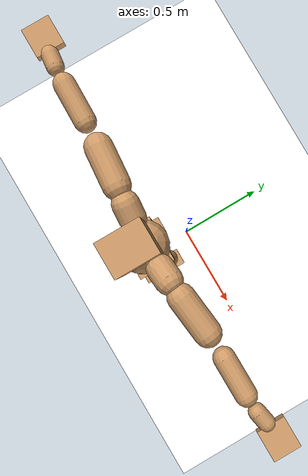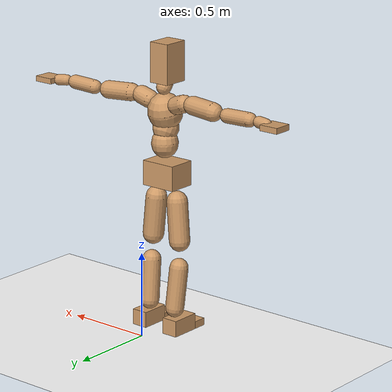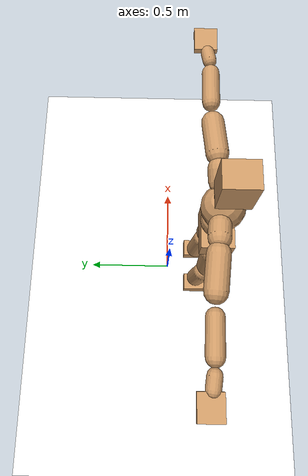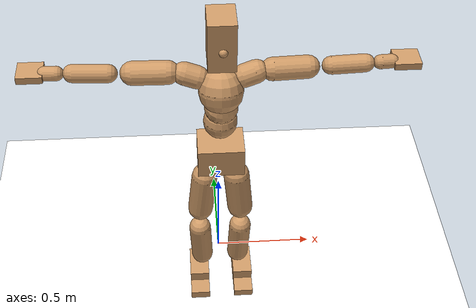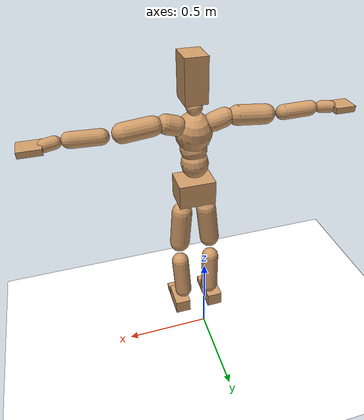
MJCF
<mujoco model="humanoid">
  <option integrator="implicitfast" />

  <visual>
    <global offwidth="1280" offheight="960" />
    <headlight active="1" ambient="0.34 0.34 0.34" diffuse="0.5 0.5 0.5" />
  </visual>

  <default>
    <joint damping="2" stiffness="2" armature="0.01" limited="true" solimplimit="0 .99 .01" />
    <geom condim="1" friction="0.7 0.005 0.0001" solimp=".99 .99 .003" solref="0.015 1" margin="0.001" rgba="0.8 0.6 .4 1" />
    <default class="smplcontact">
      <geom condim="3" friction="1. 0.005 0.0001" solref="0.015 1" solimp="0.98 0.98 0.001" priority="1" />
    </default>
    <default class="stiff_medium">
      <joint stiffness="10" />
    </default>
    <default class="stiff_medium_higher">
      <joint stiffness="50" />
    </default>
    <default class="stiff_high">
      <joint stiffness="100" />
    </default>
  </default>

  <asset>
    <texture type="skybox" builtin="gradient" rgb1="0.99 0.99 0.99" rgb2="0.608 0.828 0.892" width="100" />
    <texture builtin="flat" height="1278" mark="cross" markrgb="1 1 1" name="texgeom" random="0.01" rgb1="0.8 0.6 0.4" rgb2="0.8 0.6 0.4" type="cube" width="127" />
    <texture name="texplane" type="2d" builtin="checker" markrgb="1 1 1" rgb1="0.756 0.772 0.76" rgb2="0.6 0.6 0.6" width="100" height="100" />
    <material name="MatPlane" reflectance="0.5" texture="texplane" texrepeat="1 1" texuniform="true" />
    <material name="geom" texture="texgeom" texuniform="true" />
  </asset>

  <worldbody>
    <light name="tracking_light" pos="0 0 7" dir="0 0 -1" directional="true" cutoff="100" exponent="1" diffuse="1 1 1" specular="0.1 0.1 0.1" mode="trackcom" />
    <camera name="back" pos="0 3 2.4" xyaxes="-1 0 0 0 -1 2" mode="trackcom" />
    <camera name="side" pos="-3 0 2.4" xyaxes="0 -1 0 1 0 2" mode="trackcom" />
    <camera name="front_side" pos="-2.8 -2.8 0.8" xyaxes="0.5 -0.5 0 0.1 0.1 1" mode="trackcom" />
    <geom condim="3" name="floor" pos="0 0 0" rgba="1 1 1 1" size="100 100 .2" type="plane" material="MatPlane" />
    <body name="Pelvis" pos="-0.0018 -0.2233 0.9367" euler="90 0 0">
      <site name="Pelvis" size="0.01" />
      <freejoint name="Pelvis" />
      <geom type="box" pos="-0.0000 -0.0121 -0.0055" size="0.1069 0.0722 0.083" quat="1.0000 0.0000 0.0000 0.0000" density="3165.830099" name="Pelvis" />
      <body name="L_Hip" pos="0.0695 -0.0914 -0.0068">
        <joint name="L_Hip_x" type="hinge" pos="0 0 0" axis="1 0 0" stiffness="10.0" range="-160.0 22.92" class="stiff_medium" damping="15.0" armature="0.01"/>
        <joint name="L_Hip_y" type="hinge" pos="0 0 0" axis="0 1 0" stiffness="10.0" range="-70.0 70.0" class="stiff_medium" damping="10.000000000000004" armature="0.01000000000000001"/>
        <joint name="L_Hip_z" type="hinge" pos="0 0 0" axis="0 0 1" stiffness="10.0" range="-28.65 90.0" class="stiff_medium" damping="9.999999999999998" armature="0.009999999999999997"/>
        <geom type="capsule" density="2040.816327" fromto="0.0069 -0.075 -0.0009 0.0274 -0.3002 -0.0036" size="0.0615" name="L_Hip" />
        <body name="L_Knee" pos="0.0343 -0.3752 -0.0045">
          <joint name="L_Knee_x" type="hinge" pos="0 0 0" axis="1 0 0" range="-5.16 171.89" damping="7.999999999999999" armature="0.009999999999999998" stiffness="2.0"/>
          <joint name="L_Knee_y" type="hinge" pos="0 0 0" axis="0 1 0" range="-4.58 6.88" damping="8.000000000000004" armature="0.010000000000000009" stiffness="2.0"/>
          <joint name="L_Knee_z" type="hinge" pos="0 0 0" axis="0 0 1" range="-6.88 4.58" damping="7.999999999999996" armature="0.00999999999999999" stiffness="2.0"/>
          <geom type="capsule" density="1234.567901" fromto="-0.0027 -0.0796 -0.0087 -0.0109 -0.3184 -0.035" size="0.0541" name="L_Knee" />
          <body name="L_Ankle" pos="-0.0136 -0.398 -0.0437">
            <joint name="L_Ankle_x" type="hinge" pos="0 0 0" axis="1 0 0" range="-45.84 45.84" class="stiff_medium" damping="5.999999999999997" armature="0.009999999999999992" stiffness="10.0"/>
            <joint name="L_Ankle_y" type="hinge" pos="0 0 0" axis="0 1 0" range="-74.48 22.92" class="stiff_medium" damping="3.0" armature="0.010000000000000002" stiffness="10.0"/>
            <joint name="L_Ankle_z" type="hinge" pos="0 0 0" axis="0 0 1" range="-4.58 4.58" class="stiff_medium" damping="5.999999999999862" armature="0.00999999999999954" stiffness="10.0"/>
            <geom type="box" pos="0.0233 -0.0239 0.0242" size="0.0483 0.0464 0.085" quat="1.0000 0.0000 0.0000 0.0000" density="449.071558" name="L_Ankle" class="smplcontact" />
            <body name="L_Toe" pos="0.0264 -0.0558 0.1193">
              <joint name="L_Toe_x" type="hinge" pos="0 0 0" axis="1 0 0" range="-91.67 22.92" armature="0.009999999999999044" damping="1.9999999999999043" stiffness="2.0"/>
              <joint name="L_Toe_y" type="hinge" pos="0 0 0" axis="0 1 0" range="-4.58 4.58" armature="0.009999999999999976" damping="1.9999999999999976" stiffness="2.0"/>
              <joint name="L_Toe_z" type="hinge" pos="0 0 0" axis="0 0 1" range="-4.58 4.58" armature="0.009999999999998812" damping="1.9999999999998812" stiffness="2.0"/>
              <geom type="box" pos="-0.003 0.0055 0.0248" size="0.0478 0.02 0.0496" quat="1.0000 0.0000 0.0000 0.0000" density="423.206892" name="L_Toe" class="smplcontact" />
            </body>
          </body>
        </body>
      </body>
      <body name="R_Hip" pos="-0.0677 -0.0905 -0.0043">
        <joint name="R_Hip_x" type="hinge" pos="0 0 0" axis="1 0 0" stiffness="10.0" range="-160.0 22.92" class="stiff_medium" damping="15.0" armature="0.01"/>
        <joint name="R_Hip_y" type="hinge" pos="0 0 0" axis="0 1 0" stiffness="10.0" range="-70.0 70.0" class="stiff_medium" damping="10.000000000000004" armature="0.01000000000000001"/>
        <joint name="R_Hip_z" type="hinge" pos="0 0 0" axis="0 0 1" stiffness="10.0" range="-90.0 28.65" class="stiff_medium" damping="9.999999999999998" armature="0.009999999999999997"/>
        <geom type="capsule" density="2040.816327" fromto="-0.0077 -0.0765 -0.0018 -0.0306 -0.3061 -0.0071" size="0.0606" name="R_Hip" />
        <body name="R_Knee" pos="-0.0383 -0.3826 -0.0089">
          <joint name="R_Knee_x" type="hinge" pos="0 0 0" axis="1 0 0" range="-5.16 171.89" damping="7.999999999999999" armature="0.009999999999999998" stiffness="2.0"/>
          <joint name="R_Knee_y" type="hinge" pos="0 0 0" axis="0 1 0" range="-6.88 4.58" damping="8.000000000000004" armature="0.010000000000000009" stiffness="2.0"/>
          <joint name="R_Knee_z" type="hinge" pos="0 0 0" axis="0 0 1" range="-4.58 6.88" damping="7.999999999999996" armature="0.00999999999999999" stiffness="2.0"/>
          <geom type="capsule" density="1234.567901" fromto="0.0032 -0.0797 -0.0085 0.0126 -0.3187 -0.0338" size="0.0541" name="R_Knee" />
          <body name="R_Ankle" pos="0.0158 -0.3984 -0.0423">
            <joint name="R_Ankle_x" type="hinge" pos="0 0 0" axis="1 0 0" range="-45.84 45.84" class="stiff_medium" damping="5.999999999999997" armature="0.009999999999999992" stiffness="10.0"/>
            <joint name="R_Ankle_y" type="hinge" pos="0 0 0" axis="0 1 0" range="-22.92 74.48" class="stiff_medium" damping="3.0" armature="0.010000000000000002" stiffness="10.0"/>
            <joint name="R_Ankle_z" type="hinge" pos="0 0 0" axis="0 0 1" range="-4.58 4.58" class="stiff_medium" damping="5.999999999999862" armature="0.00999999999999954" stiffness="10.0"/>
            <geom type="box" pos="-0.0212 -0.0174 0.0256" size="0.0483 0.0478 0.0865" quat="1.0000 0.0000 0.0000 0.0000" density="434.700981" name="R_Ankle" class="smplcontact" />
            <body name="R_Toe" pos="-0.0254 -0.0481 0.1233">
              <joint name="R_Toe_x" type="hinge" pos="0 0 0" axis="1 0 0" range="-91.67 22.92" armature="0.009999999999999044" damping="1.9999999999999043" stiffness="2.0"/>
              <joint name="R_Toe_y" type="hinge" pos="0 0 0" axis="0 1 0" range="-4.58 4.58" armature="0.009999999999999976" damping="1.9999999999999976" stiffness="2.0"/>
              <joint name="R_Toe_z" type="hinge" pos="0 0 0" axis="0 0 1" range="-4.58 4.58" armature="0.009999999999998812" damping="1.9999999999998812" stiffness="2.0"/>
              <geom type="box" pos="0.0042 0.0045 0.0227" size="0.0479 0.0216 0.0493" quat="1.0000 0.0000 0.0000 0.0000" density="407.384095" name="R_Toe" class="smplcontact" />
            </body>
          </body>
        </body>
      </body>
      <body name="Torso" pos="-0.00234375 0.102188 -0.0250313">
        <joint name="Torso_x" type="hinge" pos="0 0 0" axis="1 0 0" range="-25.78 57.3" class="stiff_medium" damping="13.924386332745925" armature="0.009091029877276741" stiffness="9.47886909090909"/>
        <joint name="Torso_y" type="hinge" pos="0 0 0" axis="0 1 0" range="-57.3 57.3" class="stiff_high" damping="19.449735711162393" armature="0.010002952201007782" stiffness="94.54514318181818"/>
        <joint name="Torso_z" type="hinge" pos="0 0 0" axis="0 0 1" range="-34.38 34.38" class="stiff_high" damping="18.747492789601274" armature="0.009381472789269783" stiffness="93.66026363636362"/>
        <geom type="capsule" density="2040.816327" fromto="0.00234375 0.057 0.00046875 0.0028125 0.0696563 0.0005625" size="0.0769" name="Torso" />
        <body name="Spine" pos="0.00515625 0.12675 0.00103125">
          <joint name="Spine_x" type="hinge" pos="0 0 0" axis="1 0 0" stiffness="9.535765227272726" range="-25.78 57.3" class="stiff_medium" damping="14.13021168904114" armature="0.009305919002753496"/>
          <joint name="Spine_y" type="hinge" pos="0 0 0" axis="0 1 0" stiffness="9.513657954545454" range="-57.3 57.3" class="stiff_high" damping="7.8046485362336595" armature="0.010004126939324256"/>
          <joint name="Spine_z" type="hinge" pos="0 0 0" axis="0 0 1" stiffness="19.15594" range="-34.38 34.38" class="stiff_high" damping="11.54728026774008" armature="0.009667706319651257"/>
          <geom type="capsule" density="2040.816327" fromto="0.00065625 0.0223125 0.0106875 0.00075 0.0272812 0.013125" size="0.0755" name="Spine" />
          <body name="Chest" pos="0.00140625 0.0495938 0.0238125">
            <joint name="Chest_x" type="hinge" pos="0 0 0" axis="1 0 0" stiffness="9.658879545454546" range="-25.78 57.3" class="stiff_medium" damping="14.318084840789863" armature="0.009433233720020997"/>
            <joint name="Chest_y" type="hinge" pos="0 0 0" axis="0 1 0" stiffness="9.805882272727274" range="-57.3 57.3" class="stiff_high" damping="7.919914177464732" armature="0.009994804463066654"/>
            <joint name="Chest_z" type="hinge" pos="0 0 0" axis="0 0 1" stiffness="19.272825909090905" range="-34.38 34.38" class="stiff_high" damping="11.65221020940039" armature="0.009784502009641193"/>
            <geom type="capsule" density="2040.816327" fromto="-0.00084375 0.0639375 -0.0162188 -0.0009375 0.0780938 -0.019875" size="0.1002" name="Chest" />
            <body name="Neck" pos="-0.002625 0.200531 -0.0402187">
              <joint name="Neck_x" type="hinge" pos="0 0 0" axis="1 0 0" range="-28.65 57.3" class="stiff_medium_higher" damping="9.957065922091603" armature="0.009983589354521967" stiffness="49.65306477272727"/>
              <joint name="Neck_y" type="hinge" pos="0 0 0" axis="0 1 0" range="-40.11 40.11" class="stiff_medium_higher" damping="9.950150884054224" armature="0.009954493662702691" stiffness="49.72905000000001"/>
              <joint name="Neck_z" type="hinge" pos="0 0 0" axis="0 0 1" range="-40.11 40.11" class="stiff_medium_higher" damping="9.980845666402184" armature="0.009988471928231038" stiffness="49.86612613636364"/>
              <geom type="capsule" density="1000" fromto="0.0009375 0.0121875 0.00965625 0.00384375 0.04875 0.0385312" size="0.0436" name="Neck" />
              <body name="Head" pos="0.0052 0.065 0.0513">
                <joint name="Head_x" type="hinge" pos="0 0 0" axis="1 0 0" range="-28.65 57.3" class="stiff_medium_higher" damping="1.9999999999999987" armature="0.009999999999999986" stiffness="50.0"/>
                <joint name="Head_y" type="hinge" pos="0 0 0" axis="0 1 0" range="-40.11 40.11" class="stiff_medium_higher" damping="2.0" armature="0.010000000000000002" stiffness="50.0"/>
                <joint name="Head_z" type="hinge" pos="0 0 0" axis="0 0 1" range="-40.11 40.11" class="stiff_medium_higher" damping="1.9999999999999942" armature="0.009999999999999943" stiffness="50.0"/>
                <geom type="box" pos="-0.0042 0.0876 -0.0116" size="0.0606 0.1154 0.076" quat="1.0000 0.0000 0.0000 0.0000" density="1018.069894" name="Head" />
                <geom type="capsule" name="nose" size="0.02 0.01" pos="0 0.07 0.05" quat="1 0 0 0" mass="0" contype="0" conaffinity="0" />
              </body>
            </body>
            <body name="L_Thorax" pos="0.0788 0.1217 -0.0341">
              <joint name="L_Thorax_x" type="hinge" pos="0 0 0" axis="1 0 0" range="-10.89 4.58" class="stiff_medium_higher" damping="19.999999999999833" armature="0.009999999999999835" stiffness="50.0"/>
              <joint name="L_Thorax_y" type="hinge" pos="0 0 0" axis="0 1 0" range="-28.65 17.19" class="stiff_medium_higher" damping="20.0" armature="0.010000000000000002" stiffness="50.0"/>
              <joint name="L_Thorax_z" type="hinge" pos="0 0 0" axis="0 0 1" range="-31.51 40.11" class="stiff_medium_higher" damping="19.999999999999996" armature="0.009999999999999995" stiffness="50.0"/>
              <geom type="capsule" density="1000" fromto="0.0182 0.0061 -0.0018 0.0728 0.0244 -0.0071" size="0.0521" name="L_Thorax" />
              <body name="L_Shoulder" pos="0.091 0.0305 -0.0089">
                <joint name="L_Shoulder_x" type="hinge" pos="0 0 0" axis="1 0 0" range="-97.4 97.4" class="stiff_medium" damping="5.9999999999999964" armature="0.009999999999999986" stiffness="10.0"/>
                <joint name="L_Shoulder_y" type="hinge" pos="0 0 0" axis="0 1 0" range="-108.86 80.21" class="stiff_medium" damping="6.0" armature="0.010000000000000002" stiffness="10.0"/>
                <joint name="L_Shoulder_z" type="hinge" pos="0 0 0" axis="0 0 1" range="-97.4 85.94" class="stiff_medium" damping="6.0" armature="0.010000000000000002" stiffness="10.0"/>
                <geom type="capsule" density="1000" fromto="0.0519 -0.0026 -0.0055 0.2077 -0.0102 -0.022" size="0.0517" name="L_Shoulder" />
                <body name="L_Elbow" pos="0.2596 -0.0128 -0.0275">
                  <joint name="L_Elbow_x" type="hinge" pos="0 0 0" axis="1 0 0" range="-17.19 4.58" damping="4.99999999999995" armature="0.0099999999999998" stiffness="2.0"/>
                  <joint name="L_Elbow_y" type="hinge" pos="0 0 0" axis="0 1 0" range="-180.0 17.19" damping="5.000000000000005" armature="0.010000000000000023" stiffness="2.0"/>
                  <joint name="L_Elbow_z" type="hinge" pos="0 0 0" axis="0 0 1" range="-100.84 4.58" damping="4.999999999999999" armature="0.009999999999999998" stiffness="2.0"/>
                  <geom type="capsule" density="1000" fromto="0.0498 0.0018 -0.0002 0.1994 0.0072 -0.0009" size="0.0405" name="L_Elbow" />
                  <body name="L_Wrist" pos="0.2492 0.009 -0.0012">
                    <joint name="L_Wrist_x" type="hinge" pos="0 0 0" axis="1 0 0" range="-180.0 22.92" armature="0.00999999999999983" damping="1.999999999999983" stiffness="2.0"/>
                    <joint name="L_Wrist_y" type="hinge" pos="0 0 0" axis="0 1 0" range="-17.19 17.19" armature="0.010000000000000026" damping="2.0000000000000027" stiffness="2.0"/>
                    <joint name="L_Wrist_z" type="hinge" pos="0 0 0" axis="0 0 1" range="-22.92 22.92" armature="0.009999999999999943" damping="1.9999999999999942" stiffness="2.0"/>
                    <geom type="capsule" density="1000" fromto="0.0168 -0.0016 -0.003 0.0672 -0.0065 -0.012" size="0.0318" name="L_Wrist" class="smplcontact" />
                    <body name="L_Hand" pos="0.084 -0.0082 -0.0149">
                      <joint name="L_Hand_x" type="hinge" pos="0 0 0" axis="1 0 0" range="-17.19 17.19" armature="0.009999999999999924" damping="1.9999999999999925" stiffness="2.0"/>
                      <joint name="L_Hand_y" type="hinge" pos="0 0 0" axis="0 1 0" range="-51.57 51.57" armature="0.01000000000000008" damping="2.000000000000008" stiffness="2.0"/>
                      <joint name="L_Hand_z" type="hinge" pos="0 0 0" axis="0 0 1" range="-91.67 91.67" armature="0.010000000000000174" damping="2.0000000000000173" stiffness="2.0"/>
                      <geom type="box" pos="0.0493 0.001 -0.0058" size="0.0585 0.0158 0.0538" quat="1.0000 0.0000 0.0000 0.0000" density="400.552564" name="L_Hand" class="smplcontact" />
                    </body>
                  </body>
                </body>
              </body>
            </body>
            <body name="R_Thorax" pos="-0.0818 0.1188 -0.0386">
              <joint name="R_Thorax_x" type="hinge" pos="0 0 0" axis="1 0 0" range="-10.89 4.58" class="stiff_medium_higher" damping="19.999999999999833" armature="0.009999999999999835" stiffness="50.0"/>
              <joint name="R_Thorax_y" type="hinge" pos="0 0 0" axis="0 1 0" range="-17.19 28.65" class="stiff_medium_higher" damping="20.0" armature="0.010000000000000002" stiffness="50.0"/>
              <joint name="R_Thorax_z" type="hinge" pos="0 0 0" axis="0 0 1" range="-40.11 31.51" class="stiff_medium_higher" damping="19.999999999999996" armature="0.009999999999999995" stiffness="50.0"/>
              <geom type="capsule" density="1000" fromto="-0.0192 0.0065 -0.0018 -0.0768 0.026 -0.0073" size="0.0511" name="R_Thorax" />
              <body name="R_Shoulder" pos="-0.096 0.0326 -0.0091">
                <joint name="R_Shoulder_x" type="hinge" pos="0 0 0" axis="1 0 0" range="-97.4 97.4" class="stiff_medium" damping="5.9999999999999964" armature="0.009999999999999986" stiffness="10.0"/>
                <joint name="R_Shoulder_y" type="hinge" pos="0 0 0" axis="0 1 0" range="-80.21 108.86" class="stiff_medium" damping="6.0" armature="0.010000000000000002" stiffness="10.0"/>
                <joint name="R_Shoulder_z" type="hinge" pos="0 0 0" axis="0 0 1" range="-85.94 97.4" class="stiff_medium" damping="6.0" armature="0.010000000000000002" stiffness="10.0"/>
                <geom type="capsule" density="1000" fromto="-0.0507 -0.0027 -0.0043 -0.203 -0.0107 -0.0171" size="0.0531" name="R_Shoulder" />
                <body name="R_Elbow" pos="-0.2537 -0.0133 -0.0214">
                  <joint name="R_Elbow_x" type="hinge" pos="0 0 0" axis="1 0 0" range="-17.19 4.58" damping="4.99999999999995" armature="0.0099999999999998" stiffness="2.0"/>
                  <joint name="R_Elbow_y" type="hinge" pos="0 0 0" axis="0 1 0" range="-17.19 180.0" damping="5.000000000000005" armature="0.010000000000000023" stiffness="2.0"/>
                  <joint name="R_Elbow_z" type="hinge" pos="0 0 0" axis="0 0 1" range="-4.58 100.84" damping="4.999999999999999" armature="0.009999999999999998" stiffness="2.0"/>
                  <geom type="capsule" density="1000" fromto="-0.0511 0.0016 -0.0011 -0.2042 0.0062 -0.0044" size="0.0408" name="R_Elbow" />
                  <body name="R_Wrist" pos="-0.2553 0.0078 -0.0056">
                    <joint name="R_Wrist_x" type="hinge" pos="0 0 0" axis="1 0 0" range="-180.0 22.92" armature="0.00999999999999983" damping="1.999999999999983" stiffness="2.0"/>
                    <joint name="R_Wrist_y" type="hinge" pos="0 0 0" axis="0 1 0" range="-17.19 17.19" armature="0.010000000000000026" damping="2.0000000000000027" stiffness="2.0"/>
                    <joint name="R_Wrist_z" type="hinge" pos="0 0 0" axis="0 0 1" range="-22.92 22.92" armature="0.009999999999999943" damping="1.9999999999999942" stiffness="2.0"/>
                    <geom type="capsule" density="1000" fromto="-0.0169 -0.0012 -0.0021 -0.0677 -0.0049 -0.0083" size="0.0326" name="R_Wrist" class="smplcontact" />
                    <body name="R_Hand" pos="-0.0846 -0.0061 -0.0103">
                      <joint name="R_Hand_x" type="hinge" pos="0 0 0" axis="1 0 0" range="-17.19 17.19" armature="0.009999999999999924" damping="1.9999999999999925" stiffness="2.0"/>
                      <joint name="R_Hand_y" type="hinge" pos="0 0 0" axis="0 1 0" range="-51.57 51.57" armature="0.01000000000000008" damping="2.000000000000008" stiffness="2.0"/>
                      <joint name="R_Hand_z" type="hinge" pos="0 0 0" axis="0 0 1" range="-91.67 91.67" armature="0.010000000000000174" damping="2.0000000000000173" stiffness="2.0"/>
                      <geom type="box" pos="-0.0462 -0.0009 -0.0079" size="0.0569 0.0164 0.0546" quat="1.0000 0.0000 0.0000 0.0000" density="403.679611" name="R_Hand" class="smplcontact" />
                    </body>
                  </body>
                </body>
              </body>
            </body>
          </body>
        </body>
      </body>
    </body>
  </worldbody>
  <actuator>
    <general name="L_Hip_x" joint="L_Hip_x" biastype="affine" gainprm="287.33006409732246" biasprm="-215.3247604770444 -180.0 -2.0" ctrllimited="true" ctrlrange="-1 1" forcerange="-360.0 360.0" />
    <general name="L_Hip_y" joint="L_Hip_y" biastype="affine" gainprm="219.9114857512855" biasprm="0.0 -180.0 -2.000000000000001" ctrllimited="true" ctrlrange="-1 1" forcerange="-360.0 360.0" />
    <general name="L_Hip_z" joint="L_Hip_z" biastype="affine" gainprm="186.3749841742145" biasprm="96.3683546488669 -180.0 -1.9999999999999996" ctrllimited="true" ctrlrange="-1 1" forcerange="-360.0 360.0" />
    <general name="L_Knee_x" joint="L_Knee_x" biastype="affine" gainprm="278.10948965903646" biasprm="261.8988715665131 -180.0 -1.9999999999999998" ctrllimited="true" ctrlrange="-1 1" forcerange="-360.0 360.0" />
    <general name="L_Knee_y" joint="L_Knee_y" biastype="affine" gainprm="18.001325905069514" biasprm="3.612831551628262 -180.0 -2.000000000000001" ctrllimited="true" ctrlrange="-1 1" forcerange="-360.0 360.0" />
    <general name="L_Knee_z" joint="L_Knee_z" biastype="affine" gainprm="18.001325905069514" biasprm="-3.612831551628262 -180.0 -1.999999999999999" ctrllimited="true" ctrlrange="-1 1" forcerange="-360.0 360.0" />
    <general name="L_Ankle_x" joint="L_Ankle_x" biastype="affine" gainprm="72.00530362027807" biasprm="0.0 -90.0 -1.9999999999999991" ctrllimited="true" ctrlrange="-1 1" forcerange="-180.0 180.0" />
    <general name="L_Ankle_y" joint="L_Ankle_y" biastype="affine" gainprm="76.49778111491148" biasprm="-40.49512930477244 -90.0 -2.0" ctrllimited="true" ctrlrange="-1 1" forcerange="-180.0 180.0" />
    <general name="L_Ankle_z" joint="L_Ankle_z" biastype="affine" gainprm="7.1942471767206255" biasprm="0.0 -90.0 -1.999999999999954" ctrllimited="true" ctrlrange="-1 1" forcerange="-180.0 180.0" />
    <general name="L_Toe_x" joint="L_Toe_x" biastype="affine" gainprm="71.99902043497087" biasprm="-43.19689898685965 -72.0 -0.7999999999999617" ctrllimited="true" ctrlrange="-1 1" forcerange="-144.0 144.0" />
    <general name="L_Toe_y" joint="L_Toe_y" biastype="affine" gainprm="5.755397741376501" biasprm="0.0 -72.0 -0.799999999999999" ctrllimited="true" ctrlrange="-1 1" forcerange="-144.0 144.0" />
    <general name="L_Toe_z" joint="L_Toe_z" biastype="affine" gainprm="5.755397741376501" biasprm="0.0 -72.0 -0.7999999999999525" ctrllimited="true" ctrlrange="-1 1" forcerange="-144.0 144.0" />
    <general name="R_Hip_x" joint="R_Hip_x" biastype="affine" gainprm="287.33006409732246" biasprm="-215.3247604770444 -180.0 -2.0" ctrllimited="true" ctrlrange="-1 1" forcerange="-360.0 360.0" />
    <general name="R_Hip_y" joint="R_Hip_y" biastype="affine" gainprm="219.9114857512855" biasprm="0.0 -180.0 -2.000000000000001" ctrllimited="true" ctrlrange="-1 1" forcerange="-360.0 360.0" />
    <general name="R_Hip_z" joint="R_Hip_z" biastype="affine" gainprm="186.3749841742145" biasprm="-96.3683546488669 -180.0 -1.9999999999999996" ctrllimited="true" ctrlrange="-1 1" forcerange="-360.0 360.0" />
    <general name="R_Knee_x" joint="R_Knee_x" biastype="affine" gainprm="278.10948965903646" biasprm="261.8988715665131 -180.0 -1.9999999999999998" ctrllimited="true" ctrlrange="-1 1" forcerange="-360.0 360.0" />
    <general name="R_Knee_y" joint="R_Knee_y" biastype="affine" gainprm="18.001325905069514" biasprm="-3.612831551628262 -180.0 -2.000000000000001" ctrllimited="true" ctrlrange="-1 1" forcerange="-360.0 360.0" />
    <general name="R_Knee_z" joint="R_Knee_z" biastype="affine" gainprm="18.001325905069514" biasprm="3.612831551628262 -180.0 -1.999999999999999" ctrllimited="true" ctrlrange="-1 1" forcerange="-360.0 360.0" />
    <general name="R_Ankle_x" joint="R_Ankle_x" biastype="affine" gainprm="72.00530362027807" biasprm="0.0 -90.0 -1.9999999999999991" ctrllimited="true" ctrlrange="-1 1" forcerange="-180.0 180.0" />
    <general name="R_Ankle_y" joint="R_Ankle_y" biastype="affine" gainprm="76.49778111491148" biasprm="40.49512930477244 -90.0 -2.0" ctrllimited="true" ctrlrange="-1 1" forcerange="-180.0 180.0" />
    <general name="R_Ankle_z" joint="R_Ankle_z" biastype="affine" gainprm="7.1942471767206255" biasprm="0.0 -90.0 -1.999999999999954" ctrllimited="true" ctrlrange="-1 1" forcerange="-180.0 180.0" />
    <general name="R_Toe_x" joint="R_Toe_x" biastype="affine" gainprm="71.99902043497087" biasprm="-43.19689898685965 -72.0 -0.7999999999999617" ctrllimited="true" ctrlrange="-1 1" forcerange="-144.0 144.0" />
    <general name="R_Toe_y" joint="R_Toe_y" biastype="affine" gainprm="5.755397741376501" biasprm="0.0 -72.0 -0.799999999999999" ctrllimited="true" ctrlrange="-1 1" forcerange="-144.0 144.0" />
    <general name="R_Toe_z" joint="R_Toe_z" biastype="affine" gainprm="5.755397741376501" biasprm="0.0 -72.0 -0.7999999999999525" ctrllimited="true" ctrlrange="-1 1" forcerange="-144.0 144.0" />
    <general name="Torso_x" joint="Torso_x" biastype="affine" gainprm="164.9345450778796" biasprm="62.57507054471309 -227.49285818181815 -3.7131696887322465" ctrllimited="true" ctrlrange="-1 1" forcerange="-341.23928727272727 341.23928727272727" />
    <general name="Torso_y" joint="Torso_y" biastype="affine" gainprm="226.92505802098268" biasprm="0.0 -226.90834363636364 -3.8899471422324785" ctrllimited="true" ctrlrange="-1 1" forcerange="-340.3625154545455 340.3625154545455" />
    <general name="Torso_z" joint="Torso_z" biastype="affine" gainprm="134.88071440583306" biasprm="0.0 -224.7846327272727 -3.749498557920255" ctrllimited="true" ctrlrange="-1 1" forcerange="-337.17694909090903 337.17694909090903" />
    <general name="Spine_x" joint="Spine_x" biastype="affine" gainprm="165.92455119335867" biasprm="62.95067228712883 -228.85836545454544 -3.768056450410971" ctrllimited="true" ctrlrange="-1 1" forcerange="-343.2875481818182 343.2875481818182" />
    <general name="Spine_y" joint="Spine_y" biastype="affine" gainprm="228.344609852173" biasprm="0.0 -228.3277909090909 -3.9023242681168298" ctrllimited="true" ctrlrange="-1 1" forcerange="-342.49168636363635 342.49168636363635" />
    <general name="Spine_z" joint="Spine_z" biastype="affine" gainprm="137.93292758318296" biasprm="0.0 -229.87128 -3.8490934225800264" ctrllimited="true" ctrlrange="-1 1" forcerange="-344.80692 344.80692" />
    <general name="Chest_x" joint="Chest_x" biastype="affine" gainprm="168.06676920134512" biasprm="63.763415566037516 -231.8131090909091 -3.8181559575439636" ctrllimited="true" ctrlrange="-1 1" forcerange="-347.71966363636363 347.71966363636363" />
    <general name="Chest_y" joint="Chest_y" biastype="affine" gainprm="235.3585101041432" biasprm="0.0 -235.34117454545455 -3.959957088732366" ctrllimited="true" ctrlrange="-1 1" forcerange="-353.0117618181818 353.0117618181818" />
    <general name="Chest_z" joint="Chest_z" biastype="affine" gainprm="138.77456812048524" biasprm="0.0 -231.27391090909086 -3.88407006980013" ctrllimited="true" ctrlrange="-1 1" forcerange="-346.9108663636363 346.9108663636363" />
    <general name="Neck_x" joint="Neck_x" biastype="affine" gainprm="26.814630034781697" biasprm="8.938210011593899 -35.750206636363636 -0.7965652737673283" ctrllimited="true" ctrlrange="-1 1" forcerange="-71.50041327272727 71.50041327272727" />
    <general name="Neck_y" joint="Neck_y" biastype="affine" gainprm="25.065287407985924" biasprm="0.0 -35.804916000000006 -0.7960120707243381" ctrllimited="true" ctrlrange="-1 1" forcerange="-71.60983200000001 71.60983200000001" />
    <general name="Neck_z" joint="Neck_z" biastype="affine" gainprm="25.13437886971163" biasprm="0.0 -35.90361081818182 -0.7984676533121747" ctrllimited="true" ctrlrange="-1 1" forcerange="-71.80722163636364 71.80722163636364" />
    <general name="Head_x" joint="Head_x" biastype="affine" gainprm="18.001325905069514" biasprm="6.000441968356505 -24.0 -0.7999999999999995" ctrllimited="true" ctrlrange="-1 1" forcerange="-48.0 48.0" />
    <general name="Head_y" joint="Head_y" biastype="affine" gainprm="16.801237511398213" biasprm="0.0 -24.0 -0.8" ctrllimited="true" ctrlrange="-1 1" forcerange="-48.0 48.0" />
    <general name="Head_z" joint="Head_z" biastype="affine" gainprm="16.801237511398213" biasprm="0.0 -24.0 -0.7999999999999977" ctrllimited="true" ctrlrange="-1 1" forcerange="-48.0 48.0" />
    <general name="L_Thorax_x" joint="L_Thorax_x" biastype="affine" gainprm="16.200146117011364" biasprm="-6.6078165480505335 -120.0 -1.5999999999999868" ctrllimited="true" ctrlrange="-1 1" forcerange="-240.0 240.0" />
    <general name="L_Thorax_y" joint="L_Thorax_y" biastype="affine" gainprm="48.00353574685204" biasprm="-12.00088393671301 -120.0 -1.6" ctrllimited="true" ctrlrange="-1 1" forcerange="-240.0 240.0" />
    <general name="L_Thorax_z" joint="L_Thorax_z" biastype="affine" gainprm="75.00028861670033" biasprm="9.00589894029074 -120.0 -1.5999999999999996" ctrllimited="true" ctrlrange="-1 1" forcerange="-240.0 240.0" />
    <general name="L_Shoulder_x" joint="L_Shoulder_x" biastype="affine" gainprm="81.5976331892389" biasprm="0.0 -48.0 -1.599999999999999" ctrllimited="true" ctrlrange="-1 1" forcerange="-96.0 96.0" />
    <general name="L_Shoulder_y" joint="L_Shoulder_y" biastype="affine" gainprm="79.19745640189629" biasprm="-12.00088393671301 -48.0 -1.6" ctrllimited="true" ctrlrange="-1 1" forcerange="-96.0 96.0" />
    <general name="L_Shoulder_z" joint="L_Shoulder_z" biastype="affine" gainprm="76.79727961455369" biasprm="-4.800353574685214 -48.0 -1.6" ctrllimited="true" ctrlrange="-1 1" forcerange="-96.0 96.0" />
    <general name="L_Elbow_x" joint="L_Elbow_x" biastype="affine" gainprm="13.67849441372996" biasprm="-7.923096672353461 -72.0 -0.799999999999992" ctrllimited="true" ctrlrange="-1 1" forcerange="-144.0 144.0" />
    <general name="L_Elbow_y" joint="L_Elbow_y" biastype="affine" gainprm="123.89813107227425" biasprm="-102.29653998619085 -72.0 -0.8000000000000009" ctrllimited="true" ctrlrange="-1 1" forcerange="-144.0 144.0" />
    <general name="L_Elbow_z" joint="L_Elbow_z" biastype="affine" gainprm="66.23733950828719" biasprm="-60.4819417669107 -72.0 -0.7999999999999999" ctrllimited="true" ctrlrange="-1 1" forcerange="-144.0 144.0" />
    <general name="L_Wrist_x" joint="L_Wrist_x" biastype="affine" gainprm="21.24973270888136" biasprm="-16.449379134196157 -12.0 -0.7999999999999932" ctrllimited="true" ctrlrange="-1 1" forcerange="-24.0 24.0" />
    <general name="L_Wrist_y" joint="L_Wrist_y" biastype="affine" gainprm="3.6002651810139037" biasprm="0.0 -12.0 -0.8000000000000012" ctrllimited="true" ctrlrange="-1 1" forcerange="-24.0 24.0" />
    <general name="L_Wrist_z" joint="L_Wrist_z" biastype="affine" gainprm="4.800353574685205" biasprm="0.0 -12.0 -0.7999999999999977" ctrllimited="true" ctrlrange="-1 1" forcerange="-24.0 24.0" />
    <general name="L_Hand_x" joint="L_Hand_x" biastype="affine" gainprm="3.6002651810139037" biasprm="0.0 -12.0 -0.799999999999997" ctrllimited="true" ctrlrange="-1 1" forcerange="-24.0 24.0" />
    <general name="L_Hand_y" joint="L_Hand_y" biastype="affine" gainprm="10.800795543041708" biasprm="0.0 -12.0 -0.8000000000000033" ctrllimited="true" ctrlrange="-1 1" forcerange="-24.0 24.0" />
    <general name="L_Hand_z" joint="L_Hand_z" biastype="affine" gainprm="19.199319903638422" biasprm="0.0 -12.0 -0.8000000000000069" ctrllimited="true" ctrlrange="-1 1" forcerange="-24.0 24.0" />
    <general name="R_Thorax_x" joint="R_Thorax_x" biastype="affine" gainprm="16.200146117011364" biasprm="-6.6078165480505335 -120.0 -1.5999999999999868" ctrllimited="true" ctrlrange="-1 1" forcerange="-240.0 240.0" />
    <general name="R_Thorax_y" joint="R_Thorax_y" biastype="affine" gainprm="48.00353574685204" biasprm="12.000883936713002 -120.0 -1.6" ctrllimited="true" ctrlrange="-1 1" forcerange="-240.0 240.0" />
    <general name="R_Thorax_z" joint="R_Thorax_z" biastype="affine" gainprm="75.00028861670033" biasprm="-9.00589894029074 -120.0 -1.5999999999999996" ctrllimited="true" ctrlrange="-1 1" forcerange="-240.0 240.0" />
    <general name="R_Shoulder_x" joint="R_Shoulder_x" biastype="affine" gainprm="81.5976331892389" biasprm="0.0 -48.0 -1.599999999999999" ctrllimited="true" ctrlrange="-1 1" forcerange="-96.0 96.0" />
    <general name="R_Shoulder_y" joint="R_Shoulder_y" biastype="affine" gainprm="79.19745640189629" biasprm="12.00088393671301 -48.0 -1.6" ctrllimited="true" ctrlrange="-1 1" forcerange="-96.0 96.0" />
    <general name="R_Shoulder_z" joint="R_Shoulder_z" biastype="affine" gainprm="76.79727961455369" biasprm="4.800353574685204 -48.0 -1.6" ctrllimited="true" ctrlrange="-1 1" forcerange="-96.0 96.0" />
    <general name="R_Elbow_x" joint="R_Elbow_x" biastype="affine" gainprm="13.67849441372996" biasprm="-7.923096672353461 -72.0 -0.799999999999992" ctrllimited="true" ctrlrange="-1 1" forcerange="-144.0 144.0" />
    <general name="R_Elbow_y" joint="R_Elbow_y" biastype="affine" gainprm="123.89813107227425" biasprm="102.29653998619085 -72.0 -0.8000000000000009" ctrllimited="true" ctrlrange="-1 1" forcerange="-144.0 144.0" />
    <general name="R_Elbow_z" joint="R_Elbow_z" biastype="affine" gainprm="66.23733950828719" biasprm="60.481941766910694 -72.0 -0.7999999999999999" ctrllimited="true" ctrlrange="-1 1" forcerange="-144.0 144.0" />
    <general name="R_Wrist_x" joint="R_Wrist_x" biastype="affine" gainprm="21.24973270888136" biasprm="-16.449379134196157 -12.0 -0.7999999999999932" ctrllimited="true" ctrlrange="-1 1" forcerange="-24.0 24.0" />
    <general name="R_Wrist_y" joint="R_Wrist_y" biastype="affine" gainprm="3.6002651810139037" biasprm="0.0 -12.0 -0.8000000000000012" ctrllimited="true" ctrlrange="-1 1" forcerange="-24.0 24.0" />
    <general name="R_Wrist_z" joint="R_Wrist_z" biastype="affine" gainprm="4.800353574685205" biasprm="0.0 -12.0 -0.7999999999999977" ctrllimited="true" ctrlrange="-1 1" forcerange="-24.0 24.0" />
    <general name="R_Hand_x" joint="R_Hand_x" biastype="affine" gainprm="3.6002651810139037" biasprm="0.0 -12.0 -0.799999999999997" ctrllimited="true" ctrlrange="-1 1" forcerange="-24.0 24.0" />
    <general name="R_Hand_y" joint="R_Hand_y" biastype="affine" gainprm="10.800795543041708" biasprm="0.0 -12.0 -0.8000000000000033" ctrllimited="true" ctrlrange="-1 1" forcerange="-24.0 24.0" />
    <general name="R_Hand_z" joint="R_Hand_z" biastype="affine" gainprm="19.199319903638422" biasprm="0.0 -12.0 -0.8000000000000069" ctrllimited="true" ctrlrange="-1 1" forcerange="-24.0 24.0" />
  </actuator>
  <contact>
    <exclude body1="Torso" body2="Chest" />
    <exclude body1="Head" body2="Chest" />
    <exclude body1="R_Knee" body2="R_Toe" />
    <exclude body1="R_Knee" body2="L_Ankle" />
    <exclude body1="R_Knee" body2="L_Toe" />
    <exclude body1="L_Knee" body2="L_Toe" />
    <exclude body1="L_Knee" body2="R_Ankle" />
    <exclude body1="L_Knee" body2="R_Toe" />
    <exclude body1="L_Shoulder" body2="Chest" />
    <exclude body1="R_Shoulder" body2="Chest" />
  </contact>
  <sensor>
    <framelinvel name="sensor_Pelvis_framelinvel" objtype="xbody" objname="Pelvis" />
    <framelinvel name="sensor_L_Hip_framelinvel" objtype="xbody" objname="L_Hip" />
    <framelinvel name="sensor_L_Knee_framelinvel" objtype="xbody" objname="L_Knee" />
    <framelinvel name="sensor_L_Ankle_framelinvel" objtype="xbody" objname="L_Ankle" />
    <framelinvel name="sensor_L_Toe_framelinvel" objtype="xbody" objname="L_Toe" />
    <framelinvel name="sensor_R_Hip_framelinvel" objtype="xbody" objname="R_Hip" />
    <framelinvel name="sensor_R_Knee_framelinvel" objtype="xbody" objname="R_Knee" />
    <framelinvel name="sensor_R_Ankle_framelinvel" objtype="xbody" objname="R_Ankle" />
    <framelinvel name="sensor_R_Toe_framelinvel" objtype="xbody" objname="R_Toe" />
    <framelinvel name="sensor_Torso_framelinvel" objtype="xbody" objname="Torso" />
    <framelinvel name="sensor_Spine_framelinvel" objtype="xbody" objname="Spine" />
    <framelinvel name="sensor_Chest_framelinvel" objtype="xbody" objname="Chest" />
    <framelinvel name="sensor_Neck_framelinvel" objtype="xbody" objname="Neck" />
    <framelinvel name="sensor_Head_framelinvel" objtype="xbody" objname="Head" />
    <framelinvel name="sensor_L_Thorax_framelinvel" objtype="xbody" objname="L_Thorax" />
    <framelinvel name="sensor_L_Shoulder_framelinvel" objtype="xbody" objname="L_Shoulder" />
    <framelinvel name="sensor_L_Elbow_framelinvel" objtype="xbody" objname="L_Elbow" />
    <framelinvel name="sensor_L_Wrist_framelinvel" objtype="xbody" objname="L_Wrist" />
    <framelinvel name="sensor_L_Hand_framelinvel" objtype="xbody" objname="L_Hand" />
    <framelinvel name="sensor_R_Thorax_framelinvel" objtype="xbody" objname="R_Thorax" />
    <framelinvel name="sensor_R_Shoulder_framelinvel" objtype="xbody" objname="R_Shoulder" />
    <framelinvel name="sensor_R_Elbow_framelinvel" objtype="xbody" objname="R_Elbow" />
    <framelinvel name="sensor_R_Wrist_framelinvel" objtype="xbody" objname="R_Wrist" />
    <framelinvel name="sensor_R_Hand_framelinvel" objtype="xbody" objname="R_Hand" />
    <frameangvel name="sensor_Pelvis_frameangvel" objtype="xbody" objname="Pelvis" />
    <frameangvel name="sensor_L_Hip_frameangvel" objtype="xbody" objname="L_Hip" />
    <frameangvel name="sensor_L_Knee_frameangvel" objtype="xbody" objname="L_Knee" />
    <frameangvel name="sensor_L_Ankle_frameangvel" objtype="xbody" objname="L_Ankle" />
    <frameangvel name="sensor_L_Toe_frameangvel" objtype="xbody" objname="L_Toe" />
    <frameangvel name="sensor_R_Hip_frameangvel" objtype="xbody" objname="R_Hip" />
    <frameangvel name="sensor_R_Knee_frameangvel" objtype="xbody" objname="R_Knee" />
    <frameangvel name="sensor_R_Ankle_frameangvel" objtype="xbody" objname="R_Ankle" />
    <frameangvel name="sensor_R_Toe_frameangvel" objtype="xbody" objname="R_Toe" />
    <frameangvel name="sensor_Torso_frameangvel" objtype="xbody" objname="Torso" />
    <frameangvel name="sensor_Spine_frameangvel" objtype="xbody" objname="Spine" />
    <frameangvel name="sensor_Chest_frameangvel" objtype="xbody" objname="Chest" />
    <frameangvel name="sensor_Neck_frameangvel" objtype="xbody" objname="Neck" />
    <frameangvel name="sensor_Head_frameangvel" objtype="xbody" objname="Head" />
    <frameangvel name="sensor_L_Thorax_frameangvel" objtype="xbody" objname="L_Thorax" />
    <frameangvel name="sensor_L_Shoulder_frameangvel" objtype="xbody" objname="L_Shoulder" />
    <frameangvel name="sensor_L_Elbow_frameangvel" objtype="xbody" objname="L_Elbow" />
    <frameangvel name="sensor_L_Wrist_frameangvel" objtype="xbody" objname="L_Wrist" />
    <frameangvel name="sensor_L_Hand_frameangvel" objtype="xbody" objname="L_Hand" />
    <frameangvel name="sensor_R_Thorax_frameangvel" objtype="xbody" objname="R_Thorax" />
    <frameangvel name="sensor_R_Shoulder_frameangvel" objtype="xbody" objname="R_Shoulder" />
    <frameangvel name="sensor_R_Elbow_frameangvel" objtype="xbody" objname="R_Elbow" />
    <frameangvel name="sensor_R_Wrist_frameangvel" objtype="xbody" objname="R_Wrist" />
    <frameangvel name="sensor_R_Hand_frameangvel" objtype="xbody" objname="R_Hand" />
    <subtreelinvel name="Chest_subtreelinvel" body="Chest" />
    <gyro name="Pelvis_gyro" site="Pelvis" />
  </sensor>
</mujoco>
